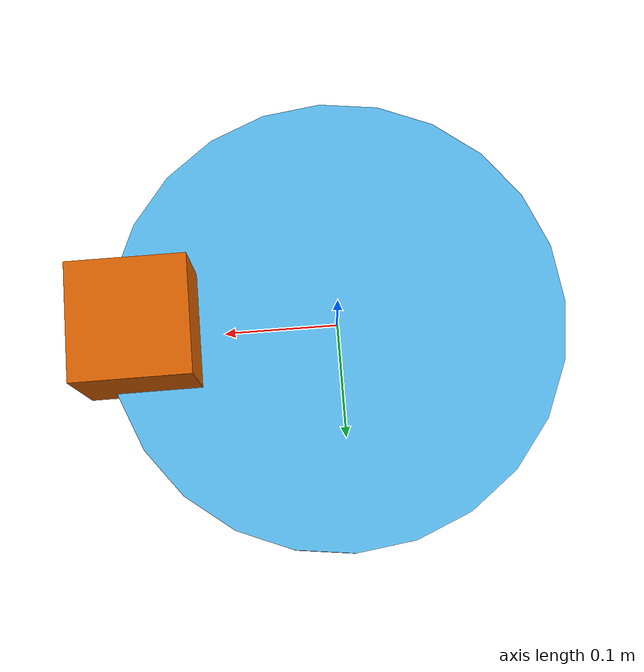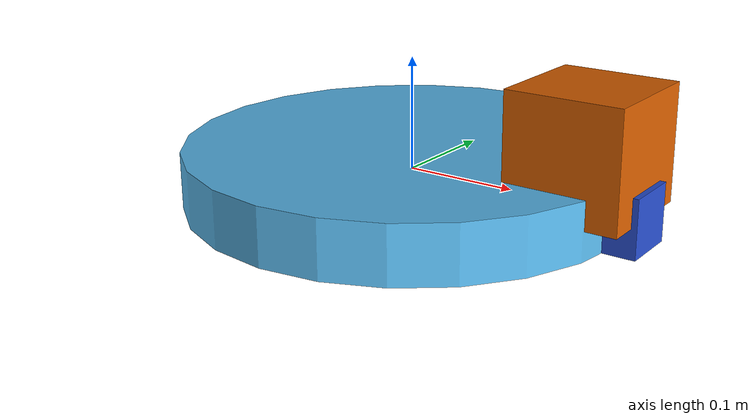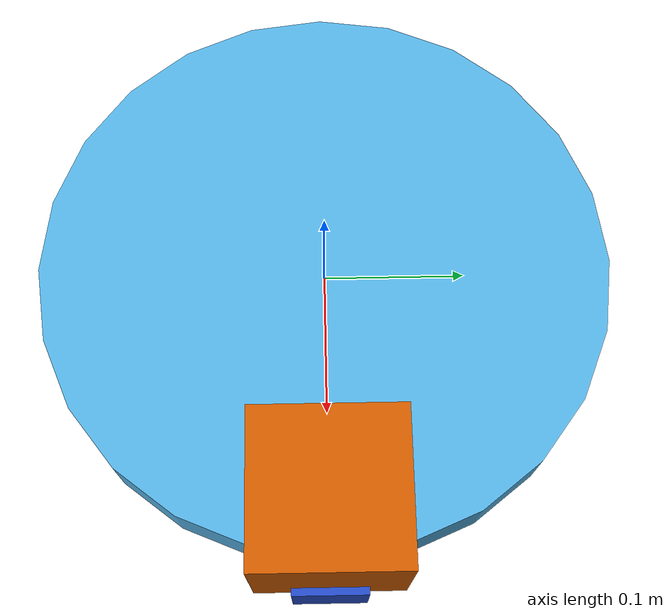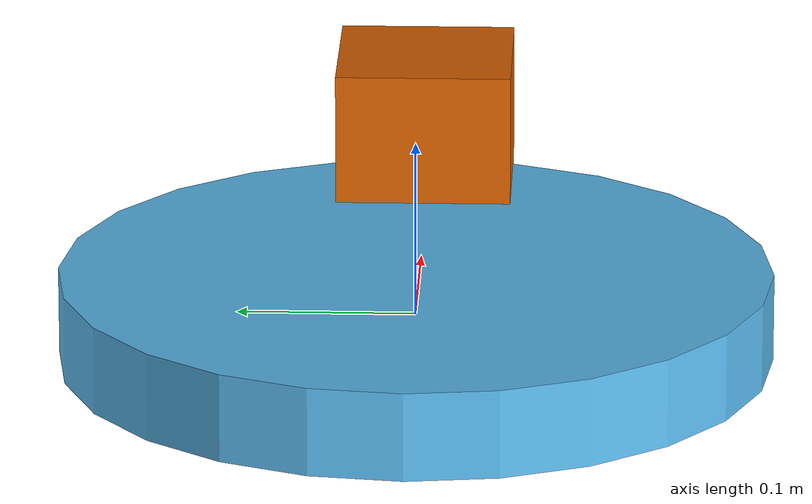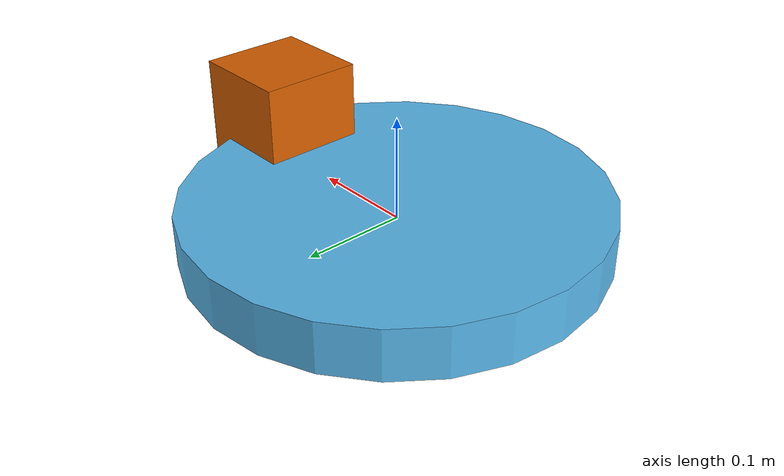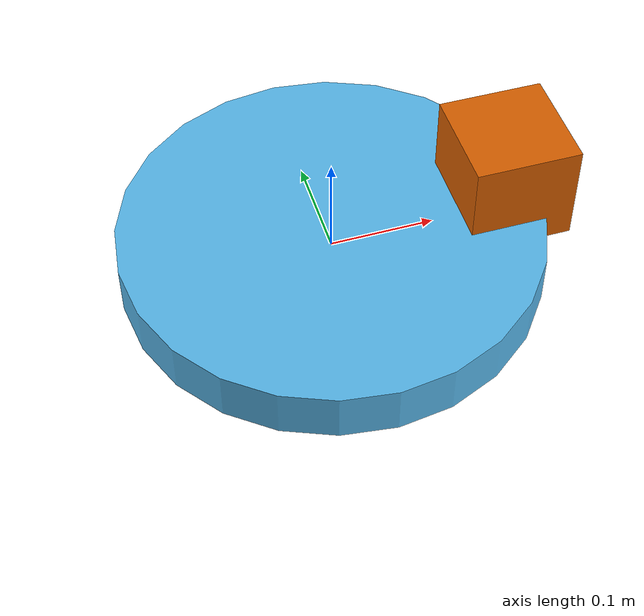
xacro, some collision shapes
<?xml version='1.0'?>

<robot name="my_robot" xmlns:xacro="http://www.ros.org/wiki/xacro">

                                                  <link name="robot_footprint"></link>

                                                  <joint name="robot_footprint_joint" type="fixed">
                                                    <origin xyz="0 0 0" rpy="0 0 0" />
                                                    <parent link="robot_footprint"/>
                                                    <child link="chassis" />
                                                  </joint>

                                                  <link name='chassis'>
                                                    <pose>0 0 0.05 0 0 0</pose>

                                                    <inertial>
                                                      <mass value="15.0"/>
                                                      <origin xyz="0.0 0 0" rpy=" 0 0 0"/>
                                                      <inertia
                                                          ixx="0.1" ixy="0" ixz="0"
                                                          iyy="0.1" iyz="0"
                                                          izz="0.1"
                                                      />
                                                    </inertial>

                                                    <collision name='collision'>
                                                      <origin xyz="0 0 0" rpy=" 0 0 0"/>
                                                      <geometry>
                                                        <cylinder radius="0.2" length="0.05"/>
                                                      </geometry>
                                                    </collision>

                                                    <visual name='chassis_visual'>
                                                      <origin xyz="0 0 0" rpy=" 0 0 0"/>
                                                      <geometry>
                                                        <cylinder radius="0.2" length="0.05"/>
                                                      </geometry>
                                                    </visual>

                                                    <collision name='back_caster_collision'>
                                                      <origin xyz="-0.15 0 -0.02" rpy=" 0 0 0"/>
                                                      <geometry>
                                                        <sphere radius="0.0199"/>
                                                      </geometry>
                                                    </collision>

                                                    <visual name='back_caster_visual'>
                                                      <origin xyz="-0.15 0 -0.02" rpy=" 0 0 0"/>
                                                      <geometry>
                                                        <sphere radius="0.02"/>
                                                      </geometry>
                                                    </visual>

                                                    <collision name='front_caster_collision'>
                                                      <origin xyz="0.15 0 -0.02" rpy=" 0 0 0"/>
                                                      <geometry>
                                                        <sphere radius="0.0199"/>
                                                      </geometry>
                                                    </collision>

                                                    <visual name='front_caster_visual'>
                                                      <origin xyz="0.15 0 -0.02" rpy=" 0 0 0"/>
                                                      <geometry>
                                                        <sphere radius="0.02"/>
                                                      </geometry>
                                                    </visual>

                                                  </link>

                                                  <link name="left_wheel">

                                                    <collision name='collision'>
                                                      <origin xyz="0 0 0" rpy=" 0 1.57 1.57"/>
                                                      <geometry>
                                                        <cylinder radius="0.03" length="0.02"/>
                                                      </geometry>
                                                    </collision>

                                                    <visual name='visual'>
                                                      <origin xyz="0 0 0" rpy=" 0 1.57 1.57"/>
                                                      <geometry>
                                                        <cylinder radius="0.03" length="0.02"/>
                                                      </geometry>
                                                    </visual>

                                                    <inertial>
                                                      <mass value="5.0"/>
                                                      <origin xyz="0.0 0 0" rpy=" 0 0 0"/>
                                                      <inertia
                                                          ixx="0.1" ixy="0" ixz="0"
                                                          iyy="0.1" iyz="0"
                                                          izz="0.1"
                                                      />
                                                    </inertial>

                                                  </link>

                                                  <link name="right_wheel">

                                                    <collision name='collision'>
                                                      <origin xyz="0 0 0" rpy=" 0 1.57 1.57"/>
                                                      <geometry>
                                                        <cylinder radius="0.03" length="0.02"/>
                                                      </geometry>
                                                    </collision>

                                                    <visual name='visual'>
                                                      <origin xyz="0 0 0" rpy=" 0 1.57 1.57"/>
                                                      <geometry>
                                                        <cylinder radius="0.03" length="0.02"/>
                                                      </geometry>
                                                    </visual>

                                                    <inertial>
                                                      <mass value="5.0"/>
                                                      <origin xyz="0.0 0 0" rpy=" 0 0 0"/>
                                                      <inertia
                                                          ixx="0.1" ixy="0" ixz="0"
                                                          iyy="0.1" iyz="0"
                                                          izz="0.1"
                                                      />
                                                    </inertial>

                                                  </link>

                                                  <joint name="left_wheel_hinge" type="continuous">
                                                    <origin xyz="0 0.15 -0.01" rpy="0 0 0" />
                                                    <parent link="chassis"/>
                                                    <child link="left_wheel" />
                                                    <axis xyz="0 1 0" rpy="0 0 0"/>
                                                    <limit effort="1000" velocity="1000"/>
                                                    <dynamic damping="1.0" friction="1.0"/>
                                                  </joint>

                                                  <joint name="right_wheel_hinge" type="continuous">
                                                    <origin xyz="0 -0.15 -0.01" rpy="0 0 0" />
                                                    <parent link="chassis"/>
                                                    <child link="right_wheel" />
                                                    <axis xyz="0 1 0" rpy="0 0 0"/>
                                                    <limit effort="1000" velocity="1000"/>
                                                    <dynamic damping="1.0" friction="1.0"/>
                                                  </joint>

                                                  <link name="camera">

                                                    <inertial>
                                                      <mass value="0.1"/>
                                                      <origin xyz="0.0 0 0" rpy=" 0 0 0"/>
                                                      <inertia
                                                          ixx="1e-6" ixy="0" ixz="0"
                                                          iyy="1e-6" iyz="0"
                                                          izz="1e-6"
                                                      />
                                                    </inertial>

                                                    <collision name='collision'>
                                                      <origin xyz="0 0 0" rpy=" 0 0 0"/>
                                                      <geometry>
                                                        <box size="0.05 0.05 0.05"/>
                                                      </geometry>
                                                    </collision>

                                                    <visual name='visual'>
                                                      <origin xyz="0 0 0" rpy=" 0 0 0"/>
                                                      <geometry>
                                                        <box size="0.05 0.05 0.05"/>
                                                      </geometry>
                                                    </visual>

                                                  </link>

                                                  <joint name="camera_joint" type="fixed">
                                                    <origin xyz="0.2 0 0" rpy="0 0 0" />
                                                    <parent link="chassis"/>
                                                    <child link="camera" />
                                                    <axis xyz="0 1 0" rpy="0 0 0"/>
                                                  </joint>

                                                  <link name="hokuyo">

                                                  <inertial>
                                                    <mass value="1e-5"/>
                                                    <origin xyz="0.0 0 0" rpy=" 0 0 0"/>
                                                    <inertia
                                                        ixx="1e-6" ixy="0" ixz="0"
                                                        iyy="1e-6" iyz="0"
                                                        izz="1e-6"
                                                    />

                                                  </inertial>

                                                  <collision name='collision'>
                                                    <origin xyz="0 0 0" rpy=" 0 0 0"/>
                                                    <geometry>
                                                      <box size="0.1 0.1 0.1"/>
                                                    </geometry>
                                                  </collision>

                                                  <visual name='visual'>
                                                    <origin xyz="0 0 0" rpy=" 0 0 0"/>
                                                    <geometry>
                                                      <mesh filename="package://my_robot/meshes/hokuyo.dae"/>
                                                    </geometry>
                                                  </visual>

                                                  </link>

                                                  <joint name="hokuyo_joint" type="fixed">
                                                    <origin xyz="0.17 0 0.05" rpy="0 0 0" />
                                                    <parent link="chassis"/>
                                                    <child link="hokuyo" />
                                                    <axis xyz="0 1 0" rpy="0 0 0"/>
                                                  </joint>

                                                  <xacro:include filename="$(find my_robot)/urdf/my_robot.gazebo" />

</robot>
